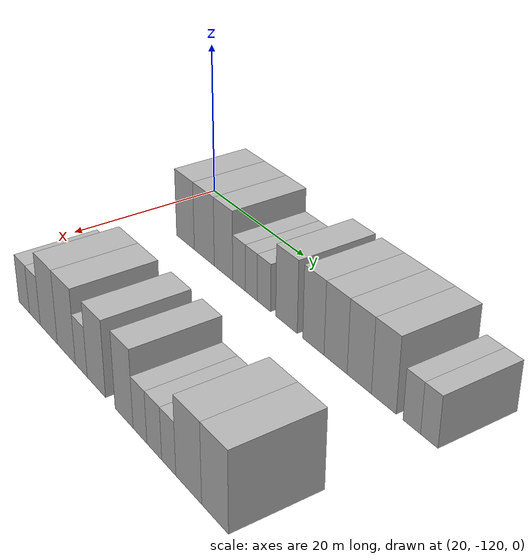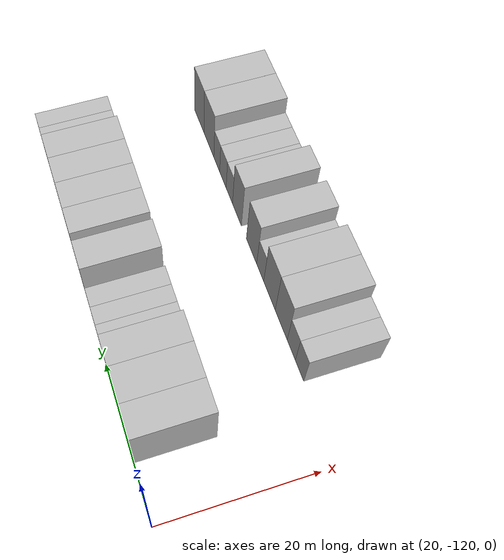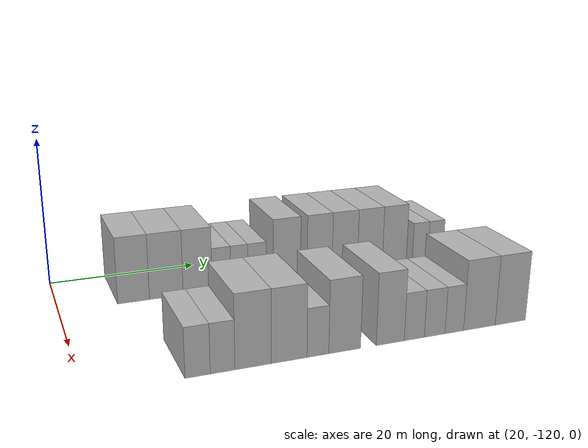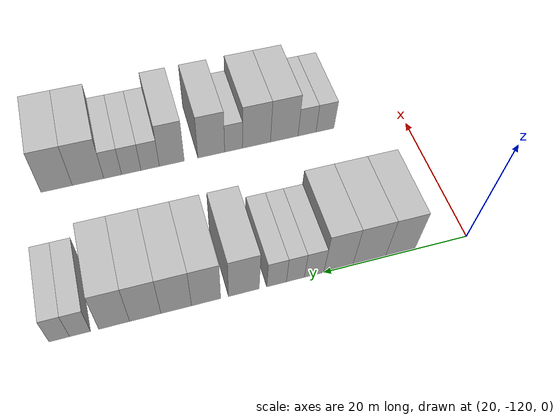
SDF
<sdf version="1.6">
 <world name="default">
  <model name="building_26">
   <static>1</static>
   <pose>25.0000 -110.4775 0 0.000000 0.000000 0.000000</pose>
   <link name="link">
    <pose>0 0 4.50 0 0 0</pose>
    <collision name="collision"><geometry><box><size>10.0000 4.1515 9.0000</size></box></geometry></collision>
    <visual name="visual">
     <cast_shadows>0</cast_shadows>
     <geometry><box><size>10.0000 4.1515 9.0000</size></box></geometry>
     <material>
      <script>
       <uri>model://HANNAS_wall/materials/scripts</uri>
       <uri>model://HANNAS_wall/materials/textures</uri>
       <name>vrc/HANNAS_wall</name>
      </script>
     </material>
    </visual>
   </link>
  </model>
  <model name="building_27">
   <static>1</static>
   <pose>25.0000 -106.1570 0 0.000000 0.000000 0.000000</pose>
   <link name="link">
    <pose>0 0 4.50 0 0 0</pose>
    <collision name="collision"><geometry><box><size>10.0000 4.4896 9.0000</size></box></geometry></collision>
    <visual name="visual">
     <cast_shadows>0</cast_shadows>
     <geometry><box><size>10.0000 4.4896 9.0000</size></box></geometry>
     <material>
      <script>
       <uri>model://HANNAS_wall/materials/scripts</uri>
       <uri>model://HANNAS_wall/materials/textures</uri>
       <name>vrc/HANNAS_wall</name>
      </script>
     </material>
    </visual>
   </link>
  </model>
  <model name="building_28">
   <static>1</static>
   <pose>25.0000 -101.9284 0 0.000000 0.000000 0.000000</pose>
   <link name="link">
    <pose>0 0 4.50 0 0 0</pose>
    <collision name="collision"><geometry><box><size>10.0000 3.9677 9.0000</size></box></geometry></collision>
    <visual name="visual">
     <cast_shadows>0</cast_shadows>
     <geometry><box><size>10.0000 3.9677 9.0000</size></box></geometry>
     <material>
      <script>
       <uri>model://HANNAS_wall/materials/scripts</uri>
       <uri>model://HANNAS_wall/materials/textures</uri>
       <name>vrc/HANNAS_wall</name>
      </script>
     </material>
    </visual>
   </link>
  </model>
  <model name="building_29">
   <static>1</static>
   <pose>25.0000 -98.6399 0 0.000000 0.000000 0.000000</pose>
   <link name="link">
    <pose>0 0 3.00 0 0 0</pose>
    <collision name="collision"><geometry><box><size>10.0000 2.6093 6.0000</size></box></geometry></collision>
    <visual name="visual">
     <cast_shadows>0</cast_shadows>
     <geometry><box><size>10.0000 2.6093 6.0000</size></box></geometry>
     <material>
      <script>
       <uri>model://HANNAS_wall/materials/scripts</uri>
       <uri>model://HANNAS_wall/materials/textures</uri>
       <name>vrc/HANNAS_wall</name>
      </script>
     </material>
    </visual>
   </link>
  </model>
  <model name="building_30">
   <static>1</static>
   <pose>25.0000 -96.1334 0 0.000000 0.000000 0.000000</pose>
   <link name="link">
    <pose>0 0 3.00 0 0 0</pose>
    <collision name="collision"><geometry><box><size>10.0000 2.4037 6.0000</size></box></geometry></collision>
    <visual name="visual">
     <cast_shadows>0</cast_shadows>
     <geometry><box><size>10.0000 2.4037 6.0000</size></box></geometry>
     <material>
      <script>
       <uri>model://HANNAS_wall/materials/scripts</uri>
       <uri>model://HANNAS_wall/materials/textures</uri>
       <name>vrc/HANNAS_wall</name>
      </script>
     </material>
    </visual>
   </link>
  </model>
  <model name="building_31">
   <static>1</static>
   <pose>25.0000 -93.6312 0 0.000000 0.000000 0.000000</pose>
   <link name="link">
    <pose>0 0 3.00 0 0 0</pose>
    <collision name="collision"><geometry><box><size>10.0000 2.6006 6.0000</size></box></geometry></collision>
    <visual name="visual">
     <cast_shadows>0</cast_shadows>
     <geometry><box><size>10.0000 2.6006 6.0000</size></box></geometry>
     <material>
      <script>
       <uri>model://HANNAS_wall/materials/scripts</uri>
       <uri>model://HANNAS_wall/materials/textures</uri>
       <name>vrc/HANNAS_wall</name>
      </script>
     </material>
    </visual>
   </link>
  </model>
  <model name="building_32">
   <static>1</static>
   <pose>25.0000 -89.3238 0 0.000000 0.000000 0.000000</pose>
   <link name="link">
    <pose>0 0 4.50 0 0 0</pose>
    <collision name="collision"><geometry><box><size>10.0000 4.0141 9.0000</size></box></geometry></collision>
    <visual name="visual">
     <cast_shadows>0</cast_shadows>
     <geometry><box><size>10.0000 4.0141 9.0000</size></box></geometry>
     <material>
      <script>
       <uri>model://HANNAS_wall/materials/scripts</uri>
       <uri>model://HANNAS_wall/materials/textures</uri>
       <name>vrc/HANNAS_wall</name>
      </script>
     </material>
    </visual>
   </link>
  </model>
  <model name="building_33">
   <static>1</static>
   <pose>25.0000 -84.4462 0 0.000000 0.000000 0.000000</pose>
   <link name="link">
    <pose>0 0 4.50 0 0 0</pose>
    <collision name="collision"><geometry><box><size>10.0000 3.7413 9.0000</size></box></geometry></collision>
    <visual name="visual">
     <cast_shadows>0</cast_shadows>
     <geometry><box><size>10.0000 3.7413 9.0000</size></box></geometry>
     <material>
      <script>
       <uri>model://HANNAS_wall/materials/scripts</uri>
       <uri>model://HANNAS_wall/materials/textures</uri>
       <name>vrc/HANNAS_wall</name>
      </script>
     </material>
    </visual>
   </link>
  </model>
  <model name="building_34">
   <static>1</static>
   <pose>25.0000 -80.6337 0 0.000000 0.000000 0.000000</pose>
   <link name="link">
    <pose>0 0 4.50 0 0 0</pose>
    <collision name="collision"><geometry><box><size>10.0000 3.8836 9.0000</size></box></geometry></collision>
    <visual name="visual">
     <cast_shadows>0</cast_shadows>
     <geometry><box><size>10.0000 3.8836 9.0000</size></box></geometry>
     <material>
      <script>
       <uri>model://HANNAS_wall/materials/scripts</uri>
       <uri>model://HANNAS_wall/materials/textures</uri>
       <name>vrc/HANNAS_wall</name>
      </script>
     </material>
    </visual>
   </link>
  </model>
  <model name="building_35">
   <static>1</static>
   <pose>25.0000 -76.7414 0 0.000000 0.000000 0.000000</pose>
   <link name="link">
    <pose>0 0 4.50 0 0 0</pose>
    <collision name="collision"><geometry><box><size>10.0000 3.9010 9.0000</size></box></geometry></collision>
    <visual name="visual">
     <cast_shadows>0</cast_shadows>
     <geometry><box><size>10.0000 3.9010 9.0000</size></box></geometry>
     <material>
      <script>
       <uri>model://HANNAS_wall/materials/scripts</uri>
       <uri>model://HANNAS_wall/materials/textures</uri>
       <name>vrc/HANNAS_wall</name>
      </script>
     </material>
    </visual>
   </link>
  </model>
  <model name="building_36">
   <static>1</static>
   <pose>25.0000 -72.8850 0 0.000000 0.000000 0.000000</pose>
   <link name="link">
    <pose>0 0 4.50 0 0 0</pose>
    <collision name="collision"><geometry><box><size>10.0000 3.8118 9.0000</size></box></geometry></collision>
    <visual name="visual">
     <cast_shadows>0</cast_shadows>
     <geometry><box><size>10.0000 3.8118 9.0000</size></box></geometry>
     <material>
      <script>
       <uri>model://HANNAS_wall/materials/scripts</uri>
       <uri>model://HANNAS_wall/materials/textures</uri>
       <name>vrc/HANNAS_wall</name>
      </script>
     </material>
    </visual>
   </link>
  </model>
  <model name="building_37">
   <static>1</static>
   <pose>25.0000 -68.7060 0 0.000000 0.000000 0.000000</pose>
   <link name="link">
    <pose>0 0 3.00 0 0 0</pose>
    <collision name="collision"><geometry><box><size>10.0000 2.5461 6.0000</size></box></geometry></collision>
    <visual name="visual">
     <cast_shadows>0</cast_shadows>
     <geometry><box><size>10.0000 2.5461 6.0000</size></box></geometry>
     <material>
      <script>
       <uri>model://HANNAS_wall/materials/scripts</uri>
       <uri>model://HANNAS_wall/materials/textures</uri>
       <name>vrc/HANNAS_wall</name>
      </script>
     </material>
    </visual>
   </link>
  </model>
  <model name="building_38">
   <static>1</static>
   <pose>25.0000 -66.1993 0 0.000000 0.000000 0.000000</pose>
   <link name="link">
    <pose>0 0 3.00 0 0 0</pose>
    <collision name="collision"><geometry><box><size>10.0000 2.4673 6.0000</size></box></geometry></collision>
    <visual name="visual">
     <cast_shadows>0</cast_shadows>
     <geometry><box><size>10.0000 2.4673 6.0000</size></box></geometry>
     <material>
      <script>
       <uri>model://HANNAS_wall/materials/scripts</uri>
       <uri>model://HANNAS_wall/materials/textures</uri>
       <name>vrc/HANNAS_wall</name>
      </script>
     </material>
    </visual>
   </link>
  </model>
  <model name="building_131">
   <static>1</static>
   <pose>47.0000 -107.9000 0 0.000000 0.000000 0.000000</pose>
   <link name="link">
    <pose>0 0 3.00 0 0 0</pose>
    <collision name="collision"><geometry><box><size>10.0000 2.8105 6.0000</size></box></geometry></collision>
    <visual name="visual">
     <cast_shadows>0</cast_shadows>
     <geometry><box><size>10.0000 2.8105 6.0000</size></box></geometry>
     <material>
      <script>
       <uri>model://HANNAS_wall/materials/scripts</uri>
       <uri>model://HANNAS_wall/materials/textures</uri>
       <name>vrc/HANNAS_wall</name>
      </script>
     </material>
    </visual>
   </link>
  </model>
  <model name="building_132">
   <static>1</static>
   <pose>47.0000 -105.0991 0 0.000000 0.000000 0.000000</pose>
   <link name="link">
    <pose>0 0 3.00 0 0 0</pose>
    <collision name="collision"><geometry><box><size>10.0000 2.7912 6.0000</size></box></geometry></collision>
    <visual name="visual">
     <cast_shadows>0</cast_shadows>
     <geometry><box><size>10.0000 2.7912 6.0000</size></box></geometry>
     <material>
      <script>
       <uri>model://HANNAS_wall/materials/scripts</uri>
       <uri>model://HANNAS_wall/materials/textures</uri>
       <name>vrc/HANNAS_wall</name>
      </script>
     </material>
    </visual>
   </link>
  </model>
  <model name="building_133">
   <static>1</static>
   <pose>47.0000 -101.5870 0 0.000000 0.000000 0.000000</pose>
   <link name="link">
    <pose>0 0 4.50 0 0 0</pose>
    <collision name="collision"><geometry><box><size>10.0000 4.2331 9.0000</size></box></geometry></collision>
    <visual name="visual">
     <cast_shadows>0</cast_shadows>
     <geometry><box><size>10.0000 4.2331 9.0000</size></box></geometry>
     <material>
      <script>
       <uri>model://HANNAS_wall/materials/scripts</uri>
       <uri>model://HANNAS_wall/materials/textures</uri>
       <name>vrc/HANNAS_wall</name>
      </script>
     </material>
    </visual>
   </link>
  </model>
  <model name="building_134">
   <static>1</static>
   <pose>47.0000 -97.3509 0 0.000000 0.000000 0.000000</pose>
   <link name="link">
    <pose>0 0 4.50 0 0 0</pose>
    <collision name="collision"><geometry><box><size>10.0000 4.2390 9.0000</size></box></geometry></collision>
    <visual name="visual">
     <cast_shadows>0</cast_shadows>
     <geometry><box><size>10.0000 4.2390 9.0000</size></box></geometry>
     <material>
      <script>
       <uri>model://HANNAS_wall/materials/scripts</uri>
       <uri>model://HANNAS_wall/materials/textures</uri>
       <name>vrc/HANNAS_wall</name>
      </script>
     </material>
    </visual>
   </link>
  </model>
  <model name="building_135">
   <static>1</static>
   <pose>47.0000 -93.8980 0 0.000000 0.000000 0.000000</pose>
   <link name="link">
    <pose>0 0 3.00 0 0 0</pose>
    <collision name="collision"><geometry><box><size>10.0000 2.6668 6.0000</size></box></geometry></collision>
    <visual name="visual">
     <cast_shadows>0</cast_shadows>
     <geometry><box><size>10.0000 2.6668 6.0000</size></box></geometry>
     <material>
      <script>
       <uri>model://HANNAS_wall/materials/scripts</uri>
       <uri>model://HANNAS_wall/materials/textures</uri>
       <name>vrc/HANNAS_wall</name>
      </script>
     </material>
    </visual>
   </link>
  </model>
  <model name="building_136">
   <static>1</static>
   <pose>47.0000 -90.5776 0 0.000000 0.000000 0.000000</pose>
   <link name="link">
    <pose>0 0 4.50 0 0 0</pose>
    <collision name="collision"><geometry><box><size>10.0000 3.9739 9.0000</size></box></geometry></collision>
    <visual name="visual">
     <cast_shadows>0</cast_shadows>
     <geometry><box><size>10.0000 3.9739 9.0000</size></box></geometry>
     <material>
      <script>
       <uri>model://HANNAS_wall/materials/scripts</uri>
       <uri>model://HANNAS_wall/materials/textures</uri>
       <name>vrc/HANNAS_wall</name>
      </script>
     </material>
    </visual>
   </link>
  </model>
  <model name="building_137">
   <static>1</static>
   <pose>47.0000 -84.7737 0 0.000000 0.000000 0.000000</pose>
   <link name="link">
    <pose>0 0 4.50 0 0 0</pose>
    <collision name="collision"><geometry><box><size>10.0000 3.6340 9.0000</size></box></geometry></collision>
    <visual name="visual">
     <cast_shadows>0</cast_shadows>
     <geometry><box><size>10.0000 3.6340 9.0000</size></box></geometry>
     <material>
      <script>
       <uri>model://HANNAS_wall/materials/scripts</uri>
       <uri>model://HANNAS_wall/materials/textures</uri>
       <name>vrc/HANNAS_wall</name>
      </script>
     </material>
    </visual>
   </link>
  </model>
  <model name="building_138">
   <static>1</static>
   <pose>47.0000 -81.6301 0 0.000000 0.000000 0.000000</pose>
   <link name="link">
    <pose>0 0 3.00 0 0 0</pose>
    <collision name="collision"><geometry><box><size>10.0000 2.6532 6.0000</size></box></geometry></collision>
    <visual name="visual">
     <cast_shadows>0</cast_shadows>
     <geometry><box><size>10.0000 2.6532 6.0000</size></box></geometry>
     <material>
      <script>
       <uri>model://HANNAS_wall/materials/scripts</uri>
       <uri>model://HANNAS_wall/materials/textures</uri>
       <name>vrc/HANNAS_wall</name>
      </script>
     </material>
    </visual>
   </link>
  </model>
  <model name="building_139">
   <static>1</static>
   <pose>47.0000 -78.9183 0 0.000000 0.000000 0.000000</pose>
   <link name="link">
    <pose>0 0 3.00 0 0 0</pose>
    <collision name="collision"><geometry><box><size>10.0000 2.7705 6.0000</size></box></geometry></collision>
    <visual name="visual">
     <cast_shadows>0</cast_shadows>
     <geometry><box><size>10.0000 2.7705 6.0000</size></box></geometry>
     <material>
      <script>
       <uri>model://HANNAS_wall/materials/scripts</uri>
       <uri>model://HANNAS_wall/materials/textures</uri>
       <name>vrc/HANNAS_wall</name>
      </script>
     </material>
    </visual>
   </link>
  </model>
  <model name="building_140">
   <static>1</static>
   <pose>47.0000 -76.2654 0 0.000000 0.000000 0.000000</pose>
   <link name="link">
    <pose>0 0 3.00 0 0 0</pose>
    <collision name="collision"><geometry><box><size>10.0000 2.5354 6.0000</size></box></geometry></collision>
    <visual name="visual">
     <cast_shadows>0</cast_shadows>
     <geometry><box><size>10.0000 2.5354 6.0000</size></box></geometry>
     <material>
      <script>
       <uri>model://HANNAS_wall/materials/scripts</uri>
       <uri>model://HANNAS_wall/materials/textures</uri>
       <name>vrc/HANNAS_wall</name>
      </script>
     </material>
    </visual>
   </link>
  </model>
  <model name="building_141">
   <static>1</static>
   <pose>47.0000 -72.7868 0 0.000000 0.000000 0.000000</pose>
   <link name="link">
    <pose>0 0 4.50 0 0 0</pose>
    <collision name="collision"><geometry><box><size>10.0000 4.4218 9.0000</size></box></geometry></collision>
    <visual name="visual">
     <cast_shadows>0</cast_shadows>
     <geometry><box><size>10.0000 4.4218 9.0000</size></box></geometry>
     <material>
      <script>
       <uri>model://HANNAS_wall/materials/scripts</uri>
       <uri>model://HANNAS_wall/materials/textures</uri>
       <name>vrc/HANNAS_wall</name>
      </script>
     </material>
    </visual>
   </link>
  </model>
  <model name="building_142">
   <static>1</static>
   <pose>47.0000 -68.4091 0 0.000000 0.000000 0.000000</pose>
   <link name="link">
    <pose>0 0 4.50 0 0 0</pose>
    <collision name="collision"><geometry><box><size>10.0000 4.3335 9.0000</size></box></geometry></collision>
    <visual name="visual">
     <cast_shadows>0</cast_shadows>
     <geometry><box><size>10.0000 4.3335 9.0000</size></box></geometry>
     <material>
      <script>
       <uri>model://HANNAS_wall/materials/scripts</uri>
       <uri>model://HANNAS_wall/materials/textures</uri>
       <name>vrc/HANNAS_wall</name>
      </script>
     </material>
    </visual>
   </link>
  </model>
 </world>
</sdf>
